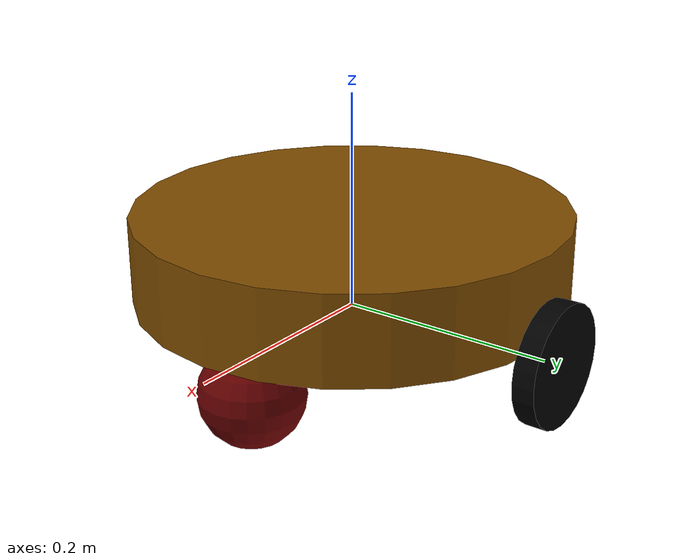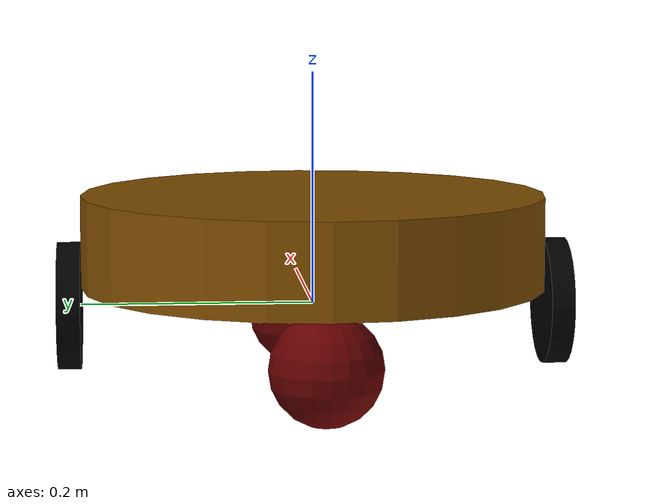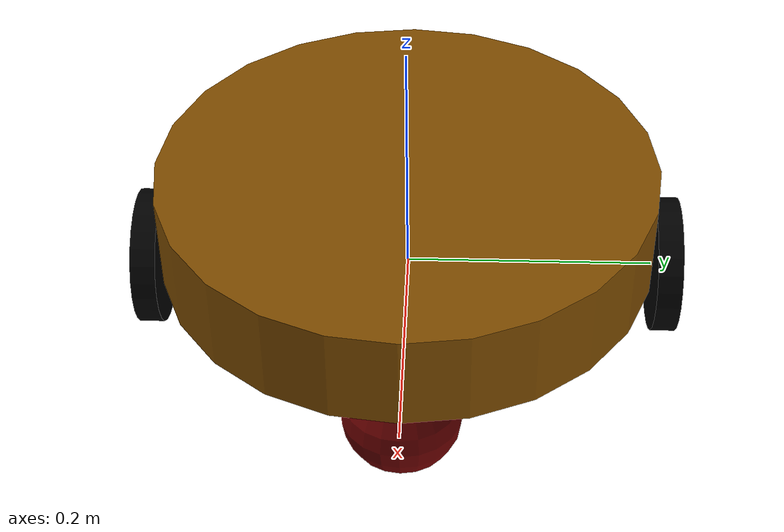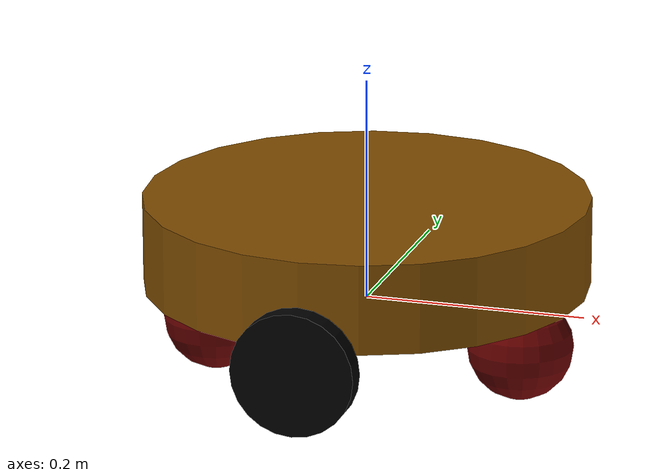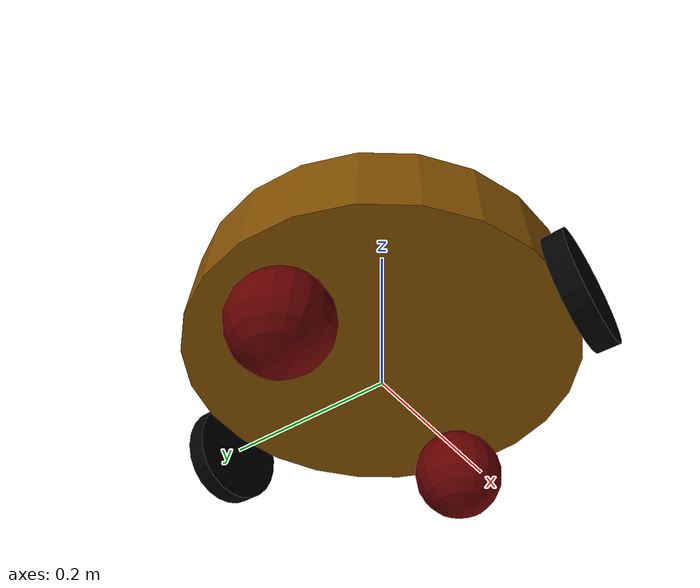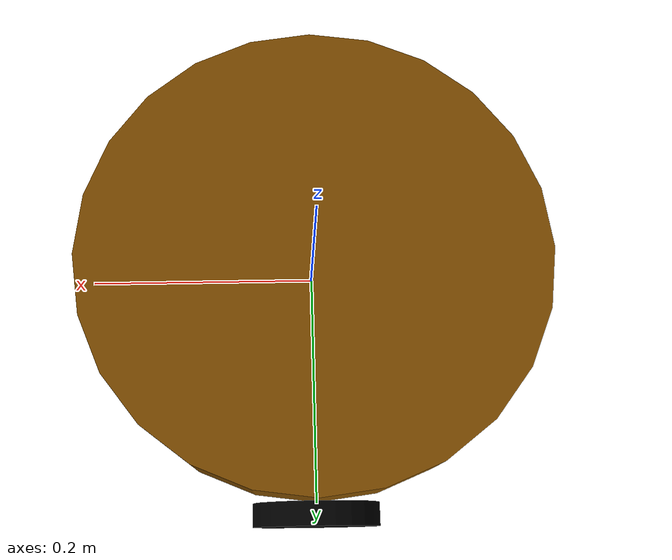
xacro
<robot name="my_car" xmlns:xacro="http://www.ros.org/wiki/xacro" >
    <xacro:property name="PI" value="3.14" />

    <material name="black">
        <color rgba="0 0 0 1" />
    </material>

    <xacro:property name="base_footprint_radius" value="0.0001" />
    <xacro:property name="base_link_radius" value="0.2" />
    <xacro:property name="base_link_length" value="0.08" />
    <xacro:property name="earth_space" value="0.015" />

    <link name="base_footprint">
        <visual>
            <geometry>
                <sphere radius="${base_footprint_radius}" />
            </geometry>
        </visual>
    </link>

    <link name="base_link" >
        <visual>
            <geometry>
                <cylinder radius="${base_link_radius}" length="${base_link_length}" />
            </geometry>
            <origin xyz="0 0 0" rpy="0 0 0" />
            <material name="yellow">
                <color rgba="0.5 0.3 0 1" />
            </material>
        </visual>
    </link>

    <joint name="baselink2footprint" type="fixed" >
        <parent link="base_footprint" />
        <child link="base_link" />
        <origin xyz="0 0 ${earth_space + base_link_length / 2}" />
    </joint>

    <xacro:property name="drive_radius" value="0.055" />
    <xacro:property name="drive_width" value="0.02" />

    <xacro:macro name="add_wheel" params="name direction" >
        <link name="${name}_wheel">
            <visual>
                <geometry>
                    <cylinder radius="${drive_radius}" length="${drive_width}" />
                </geometry>
                <material name="black" />
                <origin xyz="0 0 0" rpy="${direction * PI /2} 0 0" />
            </visual>
        </link>

        <joint name="${name}_wheel2baselink" type="continuous" >
            <parent link="base_link" />
            <child link="${name}_wheel" />
            <origin xyz="0 ${direction * (base_link_radius + drive_width / 2)} -${earth_space + base_link_length / 2}" rpy="0 0 0" />
            <axis xyz="0 1 0" />
        </joint>
    </xacro:macro>

    <xacro:add_wheel name="left" direction="1" />
    <xacro:add_wheel name="right" direction="-1" />

    <xacro:property name="support_wheel_radius" value="${(earth_space + base_link_length) / 2}" />

    <xacro:macro name="add_support" params="name flag">
        <link name="${name}_wheel">
            <visual>
                <geometry>
                    <sphere radius="${support_wheel_radius}" />
                </geometry>
                <material name="red">
                    <color rgba="0.4 0 0 1" />
                </material>
            </visual>
        </link>
        <joint name="${name}_wheel" type="continuous" >
            <parent link="base_link" />
            <child link="${name}_wheel" />
            <origin xyz="${flag * (base_link_radius - support_wheel_radius - 0.01)} 0 -${support_wheel_radius + base_link_length / 2}" />
            <axis xyz="1 1 1" />
        </joint>
    </xacro:macro>

    <xacro:add_support name="front" flag="1" />
    <xacro:add_support name="back" flag="-1" />
</robot>
